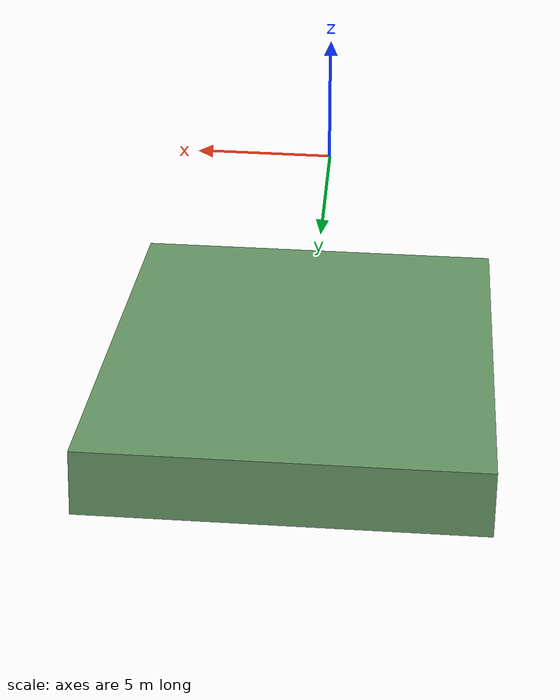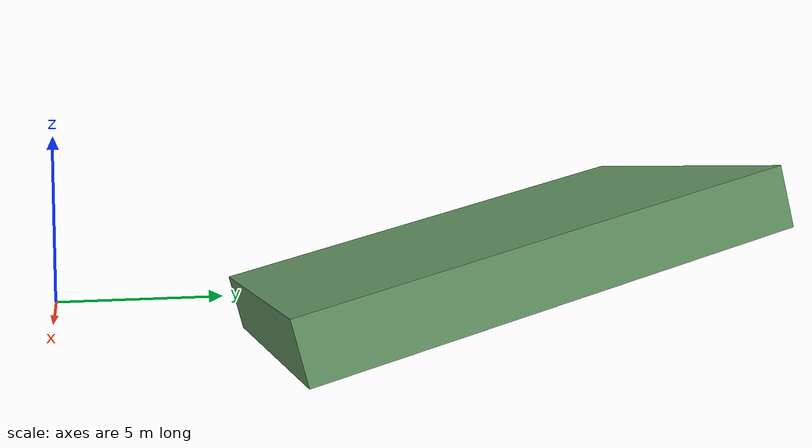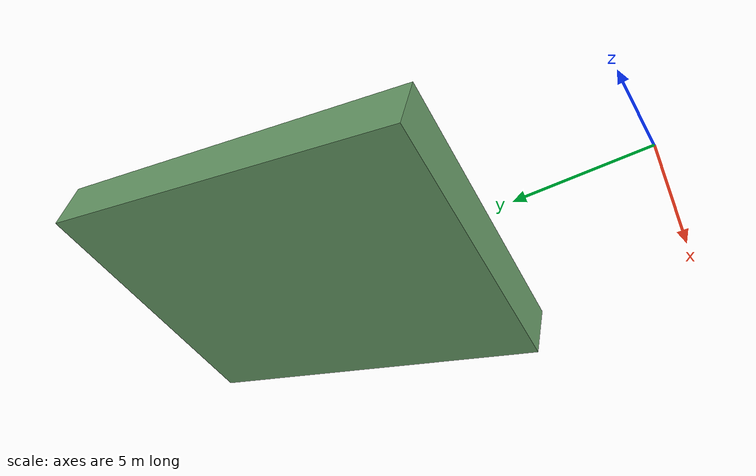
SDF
<?xml version="1.0"?>
<sdf version="1.6">
  <model name="test_ramp">
    <static>true</static>
    <pose>0 13.99 1.105 0.2618 0 0</pose>
    <link name="link">
      <collision name="collision">
        <geometry><box><size>12 16 2</size></box></geometry>
        <surface>
          <friction><ode><mu>1.0</mu><mu2>1.0</mu2></ode></friction>
        </surface>
      </collision>
      <visual name="visual">
        <geometry><box><size>12 16 2</size></box></geometry>
        <material>
          <ambient>0.3 0.5 0.3 1</ambient>
          <diffuse>0.4 0.6 0.4 1</diffuse>
        </material>
      </visual>
    </link>
  </model>
</sdf>
